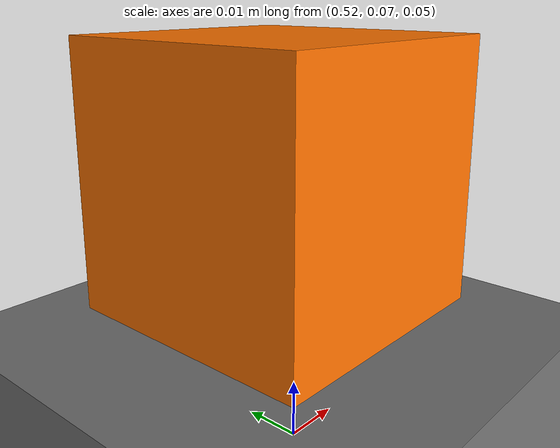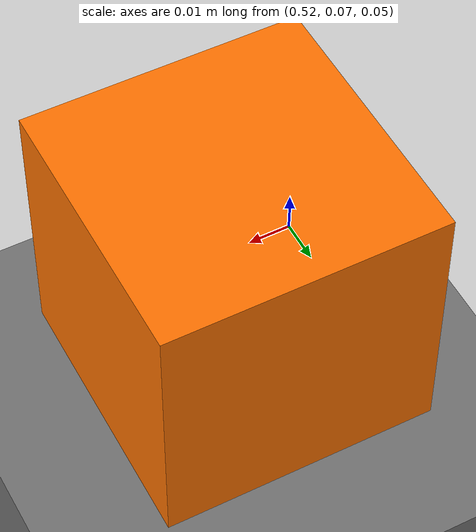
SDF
<?xml version="1.0" ?>
<sdf version="1.6">
  <world name="aim_empty">
    <physics name="default_physics" default="0" type="ode">
      <gravity>0 0 -9.80665</gravity>
      <max_step_size>0.001</max_step_size>
      <real_time_factor>1.0</real_time_factor>
      <real_time_update_rate>1000</real_time_update_rate>
    </physics>

    <include>
      <uri>model://ground_plane</uri>
    </include>

    <include>
      <uri>model://sun</uri>
    </include>

    <model name="workspace_table">
      <static>true</static>
      <pose>0.45 0 0.025 0 0 0</pose>
      <link name="table_top">
        <collision name="collision">
          <geometry>
            <box>
              <size>1.2 0.8 0.05</size>
            </box>
          </geometry>
        </collision>
        <visual name="visual">
          <geometry>
            <box>
              <size>1.2 0.8 0.05</size>
            </box>
          </geometry>
          <material>
            <ambient>0.35 0.35 0.35 1</ambient>
            <diffuse>0.45 0.45 0.45 1</diffuse>
          </material>
        </visual>
      </link>
    </model>

    <model name="target_block">
      <static>false</static>
      <pose>0.55 0.10 0.085 0 0 0</pose>
      <link name="target_link">
        <inertial>
          <mass>0.05</mass>
          <inertia>
            <ixx>0.00002</ixx>
            <iyy>0.00002</iyy>
            <izz>0.00002</izz>
          </inertia>
        </inertial>
        <collision name="collision">
          <geometry>
            <box>
              <size>0.06 0.06 0.06</size>
            </box>
          </geometry>
        </collision>
        <visual name="visual">
          <geometry>
            <box>
              <size>0.06 0.06 0.06</size>
            </box>
          </geometry>
          <material>
            <ambient>1.0 0.45 0.0 1</ambient>
            <diffuse>1.0 0.45 0.0 1</diffuse>
          </material>
        </visual>
      </link>
    </model>

    <model name="overhead_camera">
      <static>true</static>
      <pose>0.45 0 1.20 0 1.5708 0</pose>
      <link name="camera_link">
        <sensor name="workspace_camera" type="camera">
          <always_on>true</always_on>
          <update_rate>30</update_rate>
          <visualize>true</visualize>
          <camera>
            <horizontal_fov>1.047</horizontal_fov>
            <image>
              <width>640</width>
              <height>480</height>
              <format>R8G8B8</format>
            </image>
            <clip>
              <near>0.05</near>
              <far>10.0</far>
            </clip>
          </camera>
          <plugin name="gazebo_ros_camera" filename="libgazebo_ros_camera.so">
            <ros>
              <namespace>/</namespace>
              <remapping>/workspace_camera/image_raw:=/camera/image_raw</remapping>
              <remapping>/workspace_camera/camera_info:=/camera/camera_info</remapping>
            </ros>
            <camera_name>workspace_camera</camera_name>
            <frame_name>workspace_camera_link</frame_name>
          </plugin>
        </sensor>
      </link>
    </model>
  </world>
</sdf>
